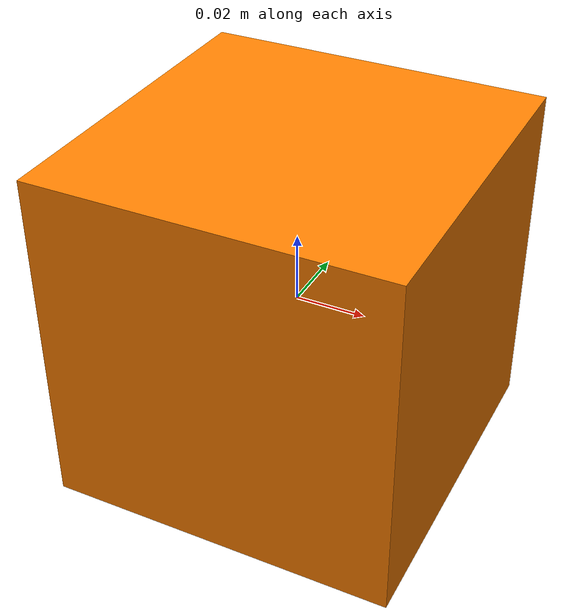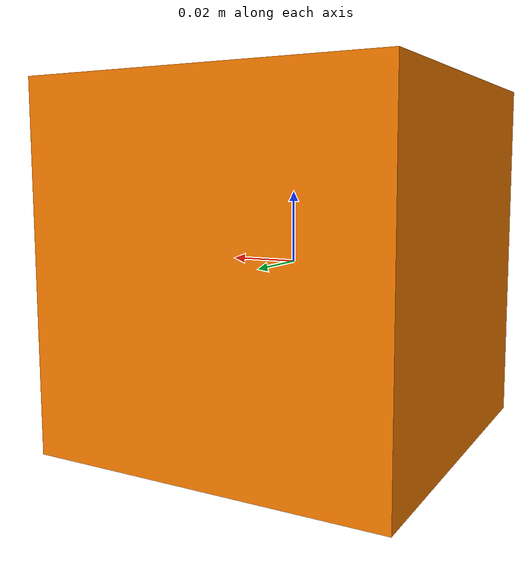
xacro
<?xml version="1.0"?>
<robot name="imu_cube" xmlns:xacro="http://www.ros.org/wiki/xacro">

  <link name="reference_link">
    <visual>
      <geometry>
        <sphere radius="0.01"/>
      </geometry>
      <material name="gray">
        <color rgba="0.5 0.5 0.5 1.0"/>
      </material>
    </visual>
  </link>

  <link name="imu_link">
    <visual>
      <geometry>
        <box size="0.1 0.1 0.1"/>
      </geometry>
      <material name="orange">
        <color rgba="1.0 0.5 0.0 1.0"/>
      </material>
    </visual>
    <collision>
      <geometry>
        <box size="0.1 0.1 0.1"/>
      </geometry>
    </collision>
    <inertial>
      <mass value="0.1"/>
      <inertia ixx="0.0001" ixy="0.0" ixz="0.0"
               iyy="0.0001" iyz="0.0"
               izz="0.0001"/>
    </inertial>
  </link>

  <joint name="reference_to_imu_joint" type="fixed">
    <parent link="reference_link"/>
    <child link="imu_link"/>
    <origin xyz="0 0 0" rpy="0 0 0"/>
  </joint>

</robot>
